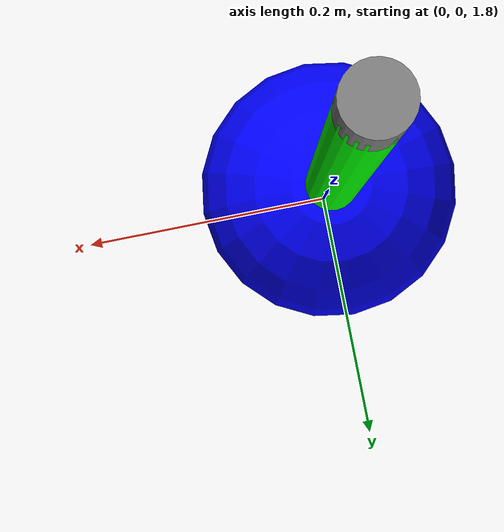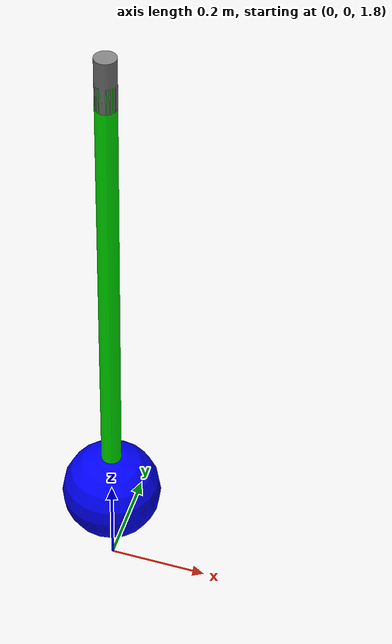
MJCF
<mujoco model="pendulum">
    <!-- 시뮬레이션 옵션: 중력 및 정밀도를 위한 타임스텝 설정 -->
    <!-- jacobian="sparse" 및 iterations 추가로 수치적 안정성 강화 -->
    <option gravity="0 0 -9.81" timestep="0.001" jacobian="sparse" iterations="50" />

    <worldbody>
        <!-- 바닥 평면 -->
        <geom name="floor" type="plane" size="5 5 0.1" rgba="0.8 0.9 0.8 1" />
        <!-- 조명 설정 -->
        <light pos="0 0 5" dir="0 0 -1" />

        <!-- 진자 시스템 지지부 -->
        <body name="support" pos="0 0 3">
            <!-- 지지 실린더: 물리적으로 무관하도록 충돌 그룹 설정(contype/conaffinity 0) -->
            <geom type="cylinder" size="0.02 0.05" rgba="0.5 0.5 0.5 1" contype="0" conaffinity="0" />

            <!-- 진자 링크 -->
            <body name="link" pos="0 0 0">
                <!-- 힌지 관절: armature 추가로 수치적 관성 부여하여 떨림 방지 -->
                <joint name="hinge" type="hinge" axis="0 1 0" pos="0 0 0" damping="0.1" armature="0.01" />
                <!-- 진자 막대 -->
                <geom type="capsule" fromto="0 0 0 0 0 -1" size="0.02" rgba="0 1 0 1" />
                <!-- 끝단 무게추 -->
                <geom name="bob" type="sphere" size="0.1" pos="0 0 -1" rgba="0 0 1 1" />
            </body>
        </body>
    </worldbody>
</mujoco>
